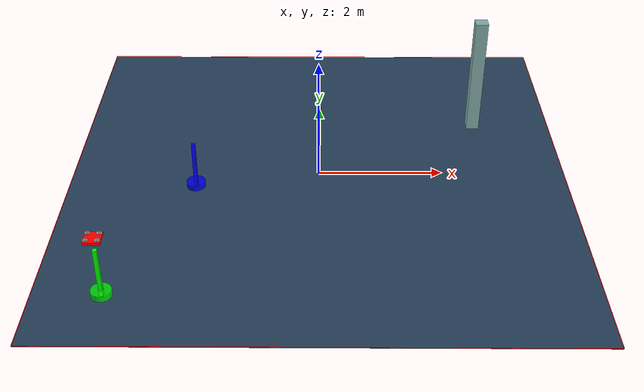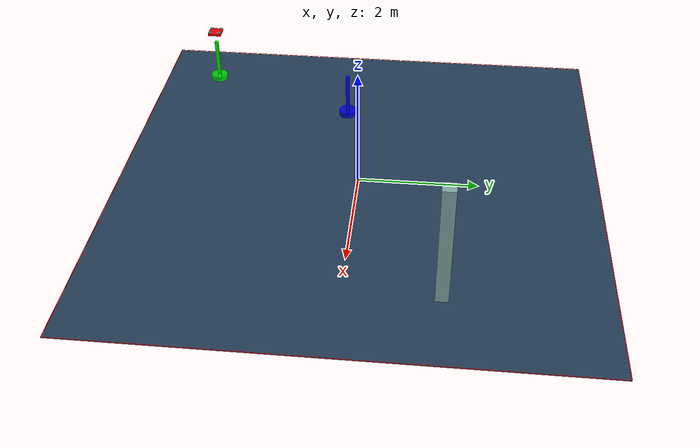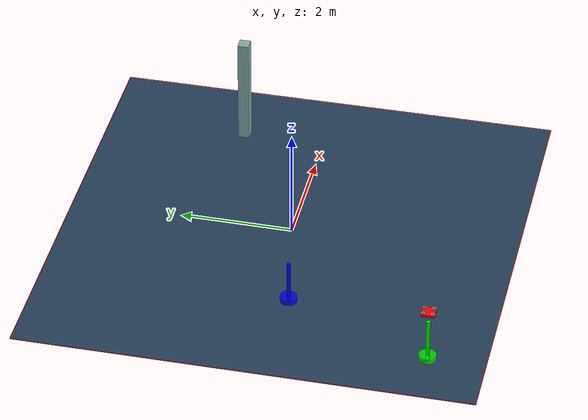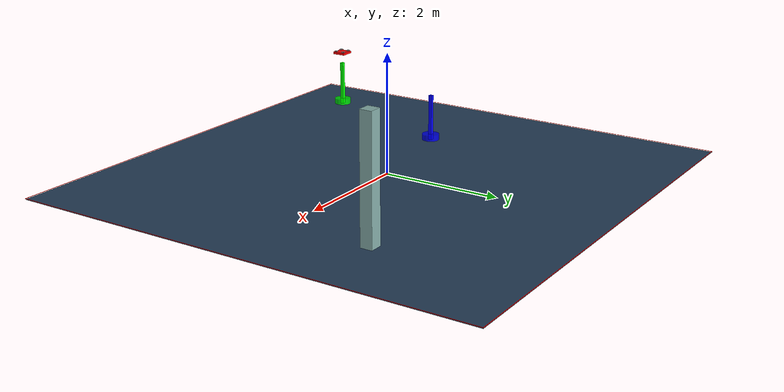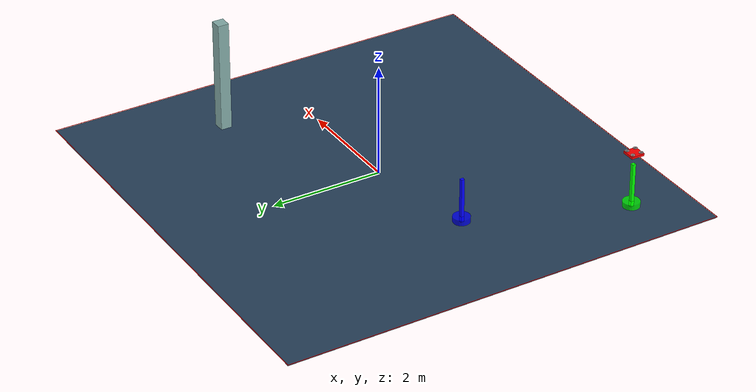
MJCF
<?xml version='1.0' encoding='utf-8'?>
<mujoco model="complex_uav_env">
  <compiler angle="degree" coordinate="local" inertiafromgeom="true" />
  <option integrator="RK4" timestep="0.01" />

  <visual>
    <headlight diffuse="0.6 0.6 0.6" ambient="0.3 0.3 0.3" />
    <rgba haze="0.15 0.25 0.35 1" />
    <global offwidth="2560" offheight="1440" />
  </visual>

  <asset>
    <texture type="skybox" builtin="gradient" rgb1="0.3 0.5 0.7" rgb2="0 0 0" width="512" height="3072" />
    <texture name="grid" type="2d" builtin="checker" rgb1="0.1 0.2 0.3" rgb2="0.2 0.3 0.4" width="512" height="512" />
    <material name="grid" texture="grid" texrepeat="1 1" />
  </asset>

  <worldbody>

    <geom name="ground" type="plane" size="4.0 4.0 0.1" material="grid" />
    <light name="light1" pos="0 0 4" dir="0 0 -1" diffuse="1 1 1" />

    <geom name="start_marker" type="cylinder" size="0.15 0.05" pos="-3.0 -3.0 0.05" rgba="0 1 0 0.8" />
    <geom name="start_pole" type="box" size="0.03 0.03 0.4" pos="-3.0 -3.0 0.4" rgba="0 1 0 1" />

    <geom name="goal_marker" type="cylinder" size="0.15 0.05" pos="-1.9641557049671305 -0.38049567824844344 0.05" rgba="0 0 1 0.8" />
    <geom name="goal_pole" type="box" size="0.03 0.03 0.4" pos="-1.9641557049671305 -0.38049567824844344 0.4" rgba="0 0 1 1" />

    <body name="chassis" pos="-3.0 -3.0 1.0">
      <joint type="free" name="root" />
      <geom type="box" size="0.12 0.12 0.02" rgba="1.0 0.0 0.0 1.0" mass="0.8" />

      <geom type="box" size="0.08 0.01 0.005" pos="0 0 0.01" rgba="0.3 0.3 0.3 1" />
      <geom type="box" size="0.01 0.08 0.005" pos="0 0 0.01" rgba="0.3 0.3 0.3 1" />

      <geom type="cylinder" size="0.015 0.02" pos="0.08 0.08 0.015" rgba="0.2 0.2 0.2 1" />
      <geom type="cylinder" size="0.015 0.02" pos="-0.08 0.08 0.015" rgba="0.2 0.2 0.2 1" />
      <geom type="cylinder" size="0.015 0.02" pos="0.08 -0.08 0.015" rgba="0.2 0.2 0.2 1" />
      <geom type="cylinder" size="0.015 0.02" pos="-0.08 -0.08 0.015" rgba="0.2 0.2 0.2 1" />

      <geom type="cylinder" size="0.04 0.002" pos="0.08 0.08 0.035" rgba="0.7 0.7 0.7 0.8" />
      <geom type="cylinder" size="0.04 0.002" pos="-0.08 0.08 0.035" rgba="0.7 0.7 0.7 0.8" />
      <geom type="cylinder" size="0.04 0.002" pos="0.08 -0.08 0.035" rgba="0.7 0.7 0.7 0.8" />
      <geom type="cylinder" size="0.04 0.002" pos="-0.08 -0.08 0.035" rgba="0.7 0.7 0.7 0.8" />

      <site name="motor1" pos="0.08 0.08 0" size="0.01" />
      <site name="motor2" pos="-0.08 0.08 0" size="0.01" />
      <site name="motor3" pos="0.08 -0.08 0" size="0.01" />
      <site name="motor4" pos="-0.08 -0.08 0" size="0.01" />
    </body>
    <geom name="test_obs_0" type="box" size="0.10519277134559776 0.09957344230460831 1.0" pos="2.673931962428755 1.4733650043701685 1.0" rgba="0.5258408919861385 0.6852588878170773 0.6679814353986666 1.0" />
  <!-- Boundary lines on ground --><geom name="boundary_north" type="box" size="4.0 0.005 0.002" pos="0 4.0 0.002" rgba="1.0 0.0 0.0 1.0" /><geom name="boundary_south" type="box" size="4.0 0.005 0.002" pos="0 -4.0 0.002" rgba="1.0 0.0 0.0 1.0" /><geom name="boundary_east" type="box" size="0.005 4.0 0.002" pos="4.0 0 0.002" rgba="1.0 0.0 0.0 1.0" /><geom name="boundary_west" type="box" size="0.005 4.0 0.002" pos="-4.0 0 0.002" rgba="1.0 0.0 0.0 1.0" /></worldbody>

  <actuator>
    <motor name="m1" gear="0 0 1 0 0 0" site="motor1" />
    <motor name="m2" gear="0 0 1 0 0 0" site="motor2" />
    <motor name="m3" gear="0 0 1 0 0 0" site="motor3" />
    <motor name="m4" gear="0 0 1 0 0 0" site="motor4" />
  </actuator>
</mujoco>
